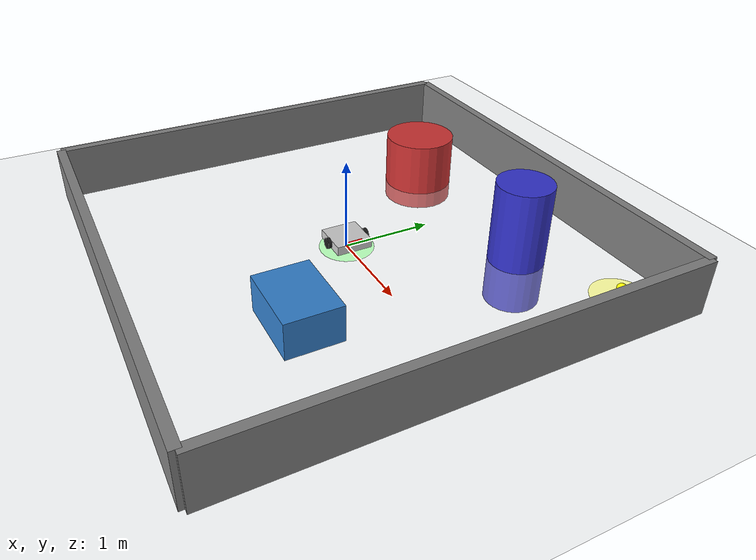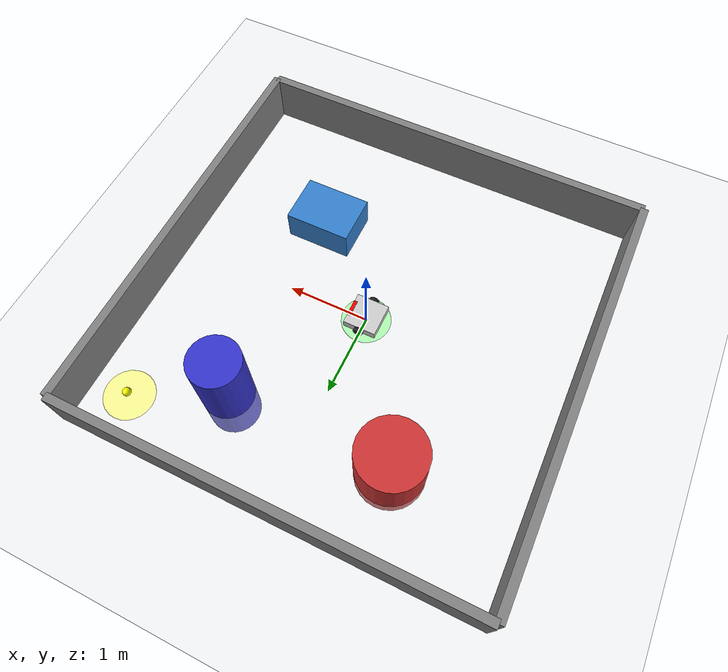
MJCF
<mujoco model="diff_robot">
    <compiler angle="degree"/>
    <option gravity="0 0 -9.81" timestep="0.002"/>

    <worldbody>
        <light pos="0 0 3" dir="0 0 -1"/>
        <geom name="floor" type="plane" size="5 5 0.1" rgba=".9 .9 .9 1"/>
        <body name="walls" pos="0 0 0">
            <geom name="wall_front" type="box" size="2.5 0.05 0.3" pos="0 2.5 0.3" rgba="0.5 0.5 0.5 1"/>
            <geom name="wall_back" type="box" size="2.5 0.05 0.3" pos="0 -2.5 0.3" rgba="0.5 0.5 0.5 1"/>
            <geom name="wall_left" type="box" size="0.05 2.5 0.3" pos="-2.5 0 0.3" rgba="0.5 0.5 0.5 1"/>
            <geom name="wall_right" type="box" size="0.05 2.5 0.3" pos="2.5 0 0.3" rgba="0.5 0.5 0.5 1"/>
        </body>
        <body name="obstacle_1" pos="1 -1 0.2" mocap="true">
            <geom name="obstacle_1" type="box" size="0.4 0.3 0.2" rgba="0.2 0.5 0.8 1"/>
        </body>
        <body name="obstacle_2" pos="-1 1.5 0.2" mocap="true">
            <geom name="obstacle_2" type="cylinder" size="0.4 0.4 0.2" rgba="0.8 0.2 0.2 1"/>
        </body>
        <body name="obstacle_3" pos="1 1.5 0.2" mocap="true">
            <geom name="obstacle_3" type="cylinder" size="0.3 0.7 0.2" rgba="0.2 0.2 0.8 1"/>
        </body>
        <geom name="start_point" type="cylinder" size="0.3 0.001" pos="0 0 0.001" rgba="0 1 0 0.3" contype="0" conaffinity="0"/>
        <body name="goal" pos="2 2 0.001">
            <geom name="goal_point" type="cylinder" size="0.3 0.001" rgba="1 1 0 0.4" contype="0" conaffinity="0"/>
            <site name="goal_site" pos="0 0 0.1" size="0.05" rgba="1 1 0 1"/>
        </body>

        <body name="base_link" pos="0 0 0.1">
            <joint type="free"/>
            <geom name="chassis" type="box" size="0.2 0.2 0.05" rgba="0.8 0.8 0.8 1"/>
            <geom name="front_mark" type="box" size="0.02 0.1 0.01" pos="0.18 0 0.05" rgba="1 0 0 1"/>

            <body name="left_wheel" pos="0 0.22 0">
                <joint name="left_joint" axis="0 1 0" damping="0.1" armature="0.01"/>
                <geom type="cylinder" size="0.06 0.02" rgba="0.1 0.1 0.1 1" euler="90 0 0"/>
            </body>

            <body name="right_wheel" pos="0 -0.22 0">
                <joint name="right_joint" axis="0 1 0" damping="0.1" armature="0.01"/>
                <geom type="cylinder" size="0.06 0.02" rgba="0.1 0.1 0.1 1" euler="90 0 0"/>
            </body>

            <body pos="0.15 0 -0.04"><joint type="ball"/><geom type="sphere" size="0.02" friction="0.01"/></body>
            <body pos="-0.15 0 -0.04"><joint type="ball"/><geom type="sphere" size="0.02" friction="0.01"/></body>

            <body name="lidar" pos="0 0 0.1">
                <site name="s0"  zaxis="1 0 0"/>
                <site name="s1"  zaxis="0.98 0.17 0"/> <site name="s2"  zaxis="0.94 0.34 0"/> <site name="s3"  zaxis="0.87 0.5 0"/>  <site name="s4"  zaxis="0.77 0.64 0"/> <site name="s5"  zaxis="0.64 0.77 0"/> <site name="s6"  zaxis="0.5 0.87 0"/>  <site name="s7"  zaxis="0.34 0.94 0"/> <site name="s8"  zaxis="0.17 0.98 0"/> <site name="s9"  zaxis="0 1 0"/>       <site name="s10" zaxis="-0.17 0.98 0"/> <site name="s11" zaxis="-0.34 0.94 0"/>
                <site name="s12" zaxis="-0.5 0.87 0"/>
                <site name="s13" zaxis="-0.64 0.77 0"/>
                <site name="s14" zaxis="-0.77 0.64 0"/>
                <site name="s15" zaxis="-0.87 0.5 0"/>
                <site name="s16" zaxis="-0.94 0.34 0"/>
                <site name="s17" zaxis="-0.98 0.17 0"/>
                <site name="s18" zaxis="-1 0 0"/>
                <site name="s19" zaxis="-0.98 -0.17 0"/>
                <site name="s20" zaxis="-0.94 -0.34 0"/>
                <site name="s21" zaxis="-0.87 -0.5 0"/>
                <site name="s22" zaxis="-0.77 -0.64 0"/>
                <site name="s23" zaxis="-0.64 -0.77 0"/>
                <site name="s24" zaxis="-0.5 -0.87 0"/>
                <site name="s25" zaxis="-0.34 -0.94 0"/>
                <site name="s26" zaxis="-0.17 -0.98 0"/>
                <site name="s27" zaxis="0 -1 0"/>
                <site name="s28" zaxis="0.17 -0.98 0"/>
                <site name="s29" zaxis="0.34 -0.94 0"/>
                <site name="s30" zaxis="0.5 -0.87 0"/>
                <site name="s31" zaxis="0.64 -0.77 0"/>
                <site name="s32" zaxis="0.77 -0.64 0"/>
                <site name="s33" zaxis="0.87 -0.5 0"/>
                <site name="s34" zaxis="0.94 -0.34 0"/>
                <site name="s35" zaxis="0.98 -0.17 0"/>
            </body>
        </body>

    </worldbody>

    <actuator>
        <velocity name="left_motor" joint="left_joint" kv="10" ctrlrange="-20 20"/>
        <velocity name="right_motor" joint="right_joint" kv="10" ctrlrange="-20 20"/>
    </actuator>

    <sensor>
        <rangefinder name="rf0" site="s0" cutoff="5"/>
        <rangefinder name="rf1" site="s1" cutoff="5"/>
        <rangefinder name="rf2" site="s2" cutoff="5"/>
        <rangefinder name="rf3" site="s3" cutoff="5"/>
        <rangefinder name="rf4" site="s4" cutoff="5"/>
        <rangefinder name="rf5" site="s5" cutoff="5"/>
        <rangefinder name="rf6" site="s6" cutoff="5"/>
        <rangefinder name="rf7" site="s7" cutoff="5"/>
        <rangefinder name="rf8" site="s8" cutoff="5"/>
        <rangefinder name="rf9" site="s9" cutoff="5"/>
        <rangefinder name="rf10" site="s10" cutoff="5"/>
        <rangefinder name="rf11" site="s11" cutoff="5"/>
        <rangefinder name="rf12" site="s12" cutoff="5"/>
        <rangefinder name="rf13" site="s13" cutoff="5"/>
        <rangefinder name="rf14" site="s14" cutoff="5"/>
        <rangefinder name="rf15" site="s15" cutoff="5"/>
        <rangefinder name="rf16" site="s16" cutoff="5"/>
        <rangefinder name="rf17" site="s17" cutoff="5"/>
        <rangefinder name="rf18" site="s18" cutoff="5"/>
        <rangefinder name="rf19" site="s19" cutoff="5"/>
        <rangefinder name="rf20" site="s20" cutoff="5"/>
        <rangefinder name="rf21" site="s21" cutoff="5"/>
        <rangefinder name="rf22" site="s22" cutoff="5"/>
        <rangefinder name="rf23" site="s23" cutoff="5"/>
        <rangefinder name="rf24" site="s24" cutoff="5"/>
        <rangefinder name="rf25" site="s25" cutoff="5"/>
        <rangefinder name="rf26" site="s26" cutoff="5"/>
        <rangefinder name="rf27" site="s27" cutoff="5"/>
        <rangefinder name="rf28" site="s28" cutoff="5"/>
        <rangefinder name="rf29" site="s29" cutoff="5"/>
        <rangefinder name="rf30" site="s30" cutoff="5"/>
        <rangefinder name="rf31" site="s31" cutoff="5"/>
        <rangefinder name="rf32" site="s32" cutoff="5"/>
        <rangefinder name="rf33" site="s33" cutoff="5"/>
        <rangefinder name="rf34" site="s34" cutoff="5"/>
        <rangefinder name="rf35" site="s35" cutoff="5"/>
    </sensor>

</mujoco>
